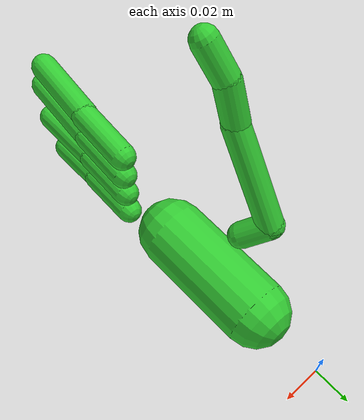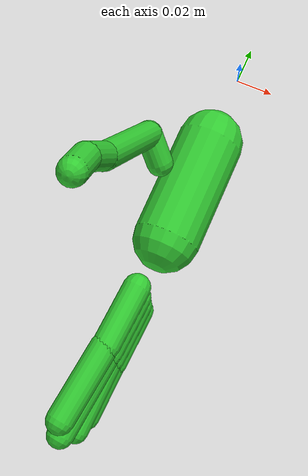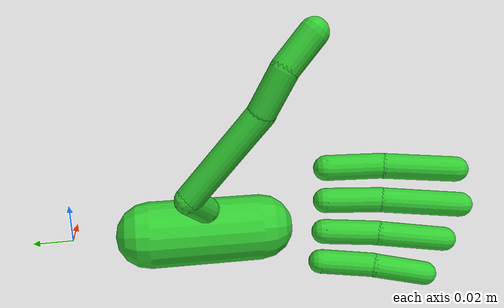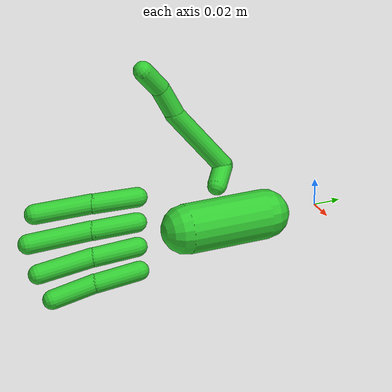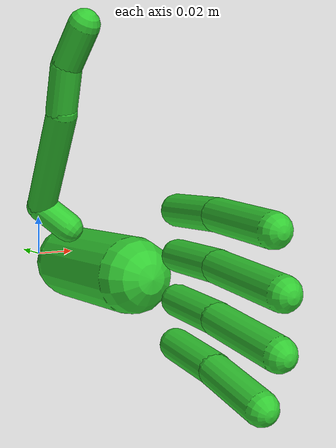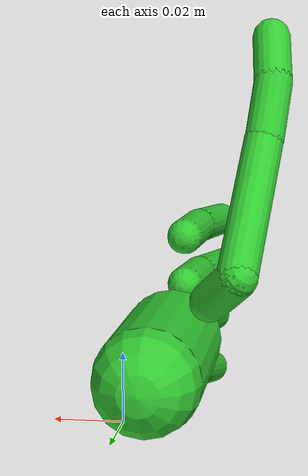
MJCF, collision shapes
<mujoco model="inspire_hand_left">
  <compiler angle="radian" meshdir="./meshes"/>

  <asset>
    <mesh name="L_hand_base_link" file="L_hand_base_link.STL"/>
    <mesh name="Link11_L" file="Link11_L.STL"/>
    <mesh name="Link12_L" file="Link12_L.STL"/>
    <mesh name="Link13_L" file="Link13_L.STL"/>
    <mesh name="Link14_L" file="Link14_L.STL"/>
    <mesh name="Link15_L" file="Link15_L.STL"/>
    <mesh name="Link16_L" file="Link16_L.STL"/>
    <mesh name="Link17_L" file="Link17_L.STL"/>
    <mesh name="Link18_L" file="Link18_L.STL"/>
    <mesh name="Link19_L" file="Link19_L.STL"/>
    <mesh name="Link20_L" file="Link20_L.STL"/>
    <mesh name="Link21_L" file="Link21_L.STL"/>
    <mesh name="Link22_L" file="Link22_L.STL"/>
  </asset>

  <worldbody>
    <!-- ── Base de la mano ─────────────────────────────────────────── -->
    <body name="L_hand_base_link" pos="0 0 0">
      <inertial pos="-0.002551 -0.066047 -0.0019357" mass="0.14143"
                fullinertia="0.0001234 8.3835e-05 7.7231e-05 2.1995e-06 -1.7694e-06 1.5968e-06"/>
      <!-- Visual -->
      <geom name="L_hand_base_visual" type="mesh" mesh="L_hand_base_link"
            contype="0" conaffinity="0" group="1" rgba="0.8 0.8 0.8 1"/>
      <!-- Colisión base (cápsula simplificada) -->
      <geom name="L_hand_base_col" type="capsule" size="0.018" fromto="0 -0.04 0  0 -0.1 0"
            rgba="0.2 0.8 0.2 0.3"/>

      <!-- ── PULGAR ──────────────────────────────────────────────── -->
      <body name="L_thumb_proximal_base" pos="-0.01696 -0.0691 0.02045"
            quat="0.499998 0.5 -0.5 0.500002">
        <inertial pos="0.0048817 0.00038782 -0.00722" mass="0.0018869"
                  diaginertia="8.66031e-08 6.87331e-08 4.94199e-08"/>
        <joint name="L_thumb_proximal_yaw_joint" axis="0 0 1"
               range="-0.1 1.3" damping="0.05" frictionloss="0.01"/>
        <geom type="mesh" mesh="Link11_L" contype="0" conaffinity="0" group="1" rgba="0.8 0.8 0.8 1"/>
        <geom type="capsule" size="0.007" fromto="0 0 0  0.01 0.01 -0.009"
              rgba="0.2 0.8 0.2 0.3"/>

        <body name="L_thumb_proximal" pos="0.0099867 0.0098242 -0.0089"
              quat="0.704571 -0.704573 -0.0598169 0.0598167">
          <inertial pos="0.021936 -0.01279 -0.0080386" mass="0.0066101"
                    diaginertia="2.78701e-06 2.44024e-06 8.6466e-07"/>
          <joint name="L_thumb_proximal_pitch_joint" axis="0 0 -1"
                 range="0 0.5" damping="0.05" frictionloss="0.01"/>
          <geom type="mesh" mesh="Link12_L" contype="0" conaffinity="0" group="1" rgba="0.8 0.8 0.8 1"/>
          <geom type="capsule" size="0.007" fromto="0 0 0  0.044 -0.035 -0.001"
                rgba="0.2 0.8 0.2 0.3"/>

          <body name="L_thumb_intermediate" pos="0.04407 -0.034553 -0.0008">
            <inertial pos="0.0095531 0.0016282 -0.0072002" mass="0.0037844"
                      diaginertia="4.6532e-07 4.48114e-07 2.45646e-07"/>
            <joint name="L_thumb_intermediate_joint" axis="0 0 -1"
                   range="0 0.8" damping="0.05" frictionloss="0.01"/>
            <geom type="mesh" mesh="Link13_L" contype="0" conaffinity="0" group="1" rgba="0.8 0.8 0.8 1"/>
            <geom type="capsule" size="0.007" fromto="0 0 0  0.02 -0.01 -0.001"
                  rgba="0.2 0.8 0.2 0.3"/>

            <body name="L_thumb_distal" pos="0.020248 -0.010156 -0.0012">
              <inertial pos="0.0092888 -0.004953 -0.0060033" mass="0.003344"
                        diaginertia="2.0026e-07 1.95246e-07 8.1594e-08"/>
              <joint name="L_thumb_distal_joint" axis="0 0 -1"
                     range="0 1.2" damping="0.05" frictionloss="0.01"/>
              <geom type="mesh" mesh="Link14_L" contype="0" conaffinity="0" group="1" rgba="0.8 0.8 0.8 1"/>
              <geom type="capsule" size="0.007" fromto="0 0 0  0.015 -0.013 -0.004"
                    rgba="0.2 0.8 0.2 0.3"/>
              <!-- Fingertip site -->
              <site name="L_thumb_tip" pos="0.015 -0.013 -0.004" size="0.005" rgba="1 0 0 1"/>
            </body>
          </body>
        </body>
      </body>

      <!-- ── ÍNDICE ──────────────────────────────────────────────── -->
      <body name="L_index_proximal" pos="0.00028533 -0.13653 0.032268"
            quat="0.999848 -0.0174526 0 0">
        <inertial pos="0.0012971 -0.011934 -0.0059998" mass="0.0042405"
                  diaginertia="6.9402e-07 6.62904e-07 2.10916e-07"/>
        <joint name="L_index_proximal_joint" axis="0 0 -1"
               range="0 1.7" damping="0.05" frictionloss="0.01"/>
        <geom type="mesh" mesh="Link15_L" contype="0" conaffinity="0" group="1" rgba="0.8 0.8 0.8 1"/>
        <geom type="capsule" size="0.007" fromto="0 0 0  -0.002 -0.032 -0.001"
              rgba="0.2 0.8 0.2 0.3"/>

        <body name="L_index_intermediate" pos="-0.0024229 -0.032041 -0.001">
          <inertial pos="0.0021753 -0.019567 -0.005" mass="0.0045682"
                    diaginertia="7.8176e-07 7.72427e-07 8.47209e-08"/>
          <joint name="L_index_intermediate_joint" axis="0 0 -1"
                 range="0 1.7" damping="0.05" frictionloss="0.01"/>
          <geom type="mesh" mesh="Link16_L" contype="0" conaffinity="0" group="1" rgba="0.8 0.8 0.8 1"/>
          <geom type="capsule" size="0.007" fromto="0 0 0  -0.005 -0.04 -0.004"
                rgba="0.2 0.8 0.2 0.3"/>
          <site name="L_index_tip" pos="-0.005 -0.04 -0.004" size="0.005" rgba="0 1 0 1"/>
        </body>
      </body>

      <!-- ── CORAZÓN ─────────────────────────────────────────────── -->
      <body name="L_middle_proximal" pos="0.00028533 -0.1371 0.01295">
        <inertial pos="0.0012971 -0.011934 -0.0059999" mass="0.0042405"
                  diaginertia="6.9402e-07 6.62904e-07 2.10916e-07"/>
        <joint name="L_middle_proximal_joint" axis="0 0 -1"
               range="0 1.7" damping="0.05" frictionloss="0.01"/>
        <geom type="mesh" mesh="Link17_L" contype="0" conaffinity="0" group="1" rgba="0.8 0.8 0.8 1"/>
        <geom type="capsule" size="0.007" fromto="0 0 0  -0.002 -0.032 -0.001"
              rgba="0.2 0.8 0.2 0.3"/>

        <body name="L_middle_intermediate" pos="-0.0024229 -0.032041 -0.001">
          <inertial pos="0.001921 -0.020796 -0.0049999" mass="0.0050397"
                    diaginertia="9.8385e-07 9.73288e-07 9.14016e-08"/>
          <joint name="L_middle_intermediate_joint" axis="0 0 -1"
                 range="0 1.7" damping="0.05" frictionloss="0.01"/>
          <geom type="mesh" mesh="Link18_L" contype="0" conaffinity="0" group="1" rgba="0.8 0.8 0.8 1"/>
          <geom type="capsule" size="0.007" fromto="0 0 0  -0.005 -0.045 -0.004"
                rgba="0.2 0.8 0.2 0.3"/>
          <site name="L_middle_tip" pos="-0.005 -0.045 -0.004" size="0.005" rgba="0 0 1 1"/>
        </body>
      </body>

      <!-- ── ANULAR ───────────────────────────────────────────────── -->
      <body name="L_ring_proximal" pos="0.00028533 -0.13691 -0.0062872"
            quat="0.999657 0.026177 0 0">
        <inertial pos="0.0012971 -0.011934 -0.0059999" mass="0.0042405"
                  diaginertia="6.9402e-07 6.62904e-07 2.10916e-07"/>
        <joint name="L_ring_proximal_joint" axis="0 0 -1"
               range="0 1.7" damping="0.05" frictionloss="0.01"/>
        <geom type="mesh" mesh="Link19_L" contype="0" conaffinity="0" group="1" rgba="0.8 0.8 0.8 1"/>
        <geom type="capsule" size="0.007" fromto="0 0 0  -0.002 -0.032 -0.001"
              rgba="0.2 0.8 0.2 0.3"/>

        <body name="L_ring_intermediate" pos="-0.0024229 -0.032041 -0.001">
          <inertial pos="0.0021753 -0.019567 -0.005" mass="0.0045682"
                    diaginertia="7.8176e-07 7.72437e-07 8.47208e-08"/>
          <joint name="L_ring_intermediate_joint" axis="0 0 -1"
                 range="0 1.7" damping="0.05" frictionloss="0.01"/>
          <geom type="mesh" mesh="Link20_L" contype="0" conaffinity="0" group="1" rgba="0.8 0.8 0.8 1"/>
          <geom type="capsule" size="0.007" fromto="0 0 0  -0.002 -0.04 -0.004"
                rgba="0.2 0.8 0.2 0.3"/>
          <site name="L_ring_tip" pos="-0.002 -0.04 -0.004" size="0.005" rgba="0 1 1 1"/>
        </body>
      </body>

      <!-- ── MEÑIQUE ─────────────────────────────────────────────── -->
      <body name="L_pinky_proximal" pos="0.00028533 -0.13571 -0.025488"
            quat="0.99863 0.0523361 0 0">
        <inertial pos="0.0012971 -0.011934 -0.0059999" mass="0.0042405"
                  diaginertia="6.9402e-07 6.62904e-07 2.10916e-07"/>
        <joint name="L_pinky_proximal_joint" axis="0 0 -1"
               range="0 1.7" damping="0.05" frictionloss="0.01"/>
        <geom type="mesh" mesh="Link21_L" contype="0" conaffinity="0" group="1" rgba="0.8 0.8 0.8 1"/>
        <geom type="capsule" size="0.007" fromto="0 0 0  -0.002 -0.032 -0.001"
              rgba="0.2 0.8 0.2 0.3"/>

        <body name="L_pinky_intermediate" pos="-0.0024229 -0.032041 -0.001">
          <inertial pos="0.0024788 -0.016208 -0.0050001" mass="0.0036036"
                    diaginertia="4.4881e-07 4.43809e-07 6.5736e-08"/>
          <joint name="L_pinky_intermediate_joint" axis="0 0 -1"
                 range="0 1.7" damping="0.05" frictionloss="0.01"/>
          <geom type="mesh" mesh="Link22_L" contype="0" conaffinity="0" group="1" rgba="0.8 0.8 0.8 1"/>
          <geom type="capsule" size="0.007" fromto="0 0 0  -0.002 -0.032 -0.004"
                rgba="0.2 0.8 0.2 0.3"/>
          <site name="L_pinky_tip" pos="-0.002 -0.032 -0.004" size="0.005" rgba="1 1 1 1"/>
        </body>
      </body>

    </body>
  </worldbody>

  <!-- ── Actuadores (solo joints proximales, los 6 del inspire_hand.yml) ── -->
  <actuator>
    <position name="act_L_thumb_yaw"   joint="L_thumb_proximal_yaw_joint"   kp="2" ctrlrange="-0.1 1.3"/>
    <position name="act_L_thumb_pitch" joint="L_thumb_proximal_pitch_joint" kp="2" ctrlrange="0 0.5"/>
    <position name="act_L_index"       joint="L_index_proximal_joint"       kp="2" ctrlrange="0 1.7"/>
    <position name="act_L_middle"      joint="L_middle_proximal_joint"      kp="2" ctrlrange="0 1.7"/>
    <position name="act_L_ring"        joint="L_ring_proximal_joint"        kp="2" ctrlrange="0 1.7"/>
    <position name="act_L_pinky"       joint="L_pinky_proximal_joint"       kp="2" ctrlrange="0 1.7"/>
  </actuator>

  <!-- ── Joints mimicados (intermediate sigue al proximal) ── -->
  <!-- joint1 = polycoef[0] + polycoef[1]*joint2 -->
  <equality>
    <joint name="mimic_thumb_intermediate" joint1="L_thumb_intermediate_joint" joint2="L_thumb_proximal_pitch_joint" polycoef="0 1.6 0 0 0"/>
    <joint name="mimic_thumb_distal"       joint1="L_thumb_distal_joint"       joint2="L_thumb_proximal_pitch_joint" polycoef="0 2.4 0 0 0"/>
    <joint name="mimic_index_intermediate" joint1="L_index_intermediate_joint" joint2="L_index_proximal_joint"       polycoef="0 1.0 0 0 0"/>
    <joint name="mimic_middle_intermediate" joint1="L_middle_intermediate_joint" joint2="L_middle_proximal_joint"    polycoef="0 1.0 0 0 0"/>
    <joint name="mimic_ring_intermediate"  joint1="L_ring_intermediate_joint"  joint2="L_ring_proximal_joint"        polycoef="0 1.0 0 0 0"/>
    <joint name="mimic_pinky_intermediate" joint1="L_pinky_intermediate_joint" joint2="L_pinky_proximal_joint"       polycoef="0 1.0 0 0 0"/>
  </equality>

</mujoco>
